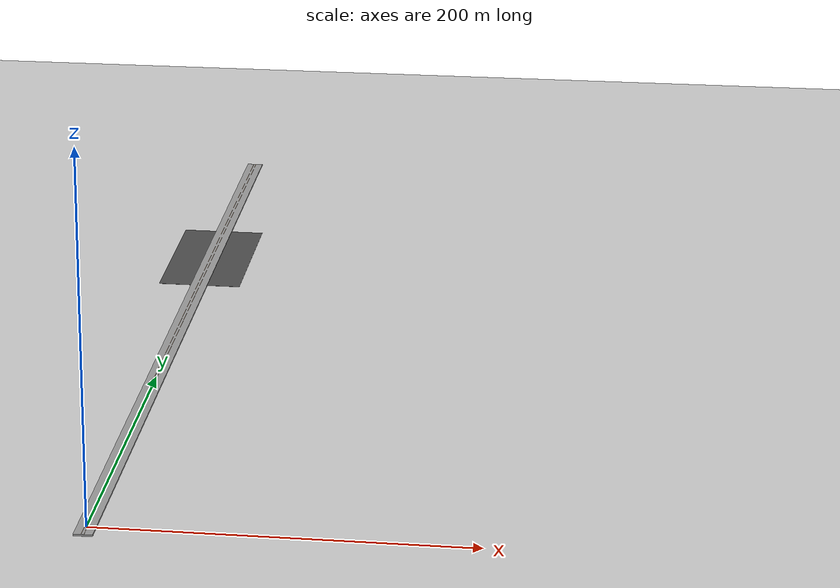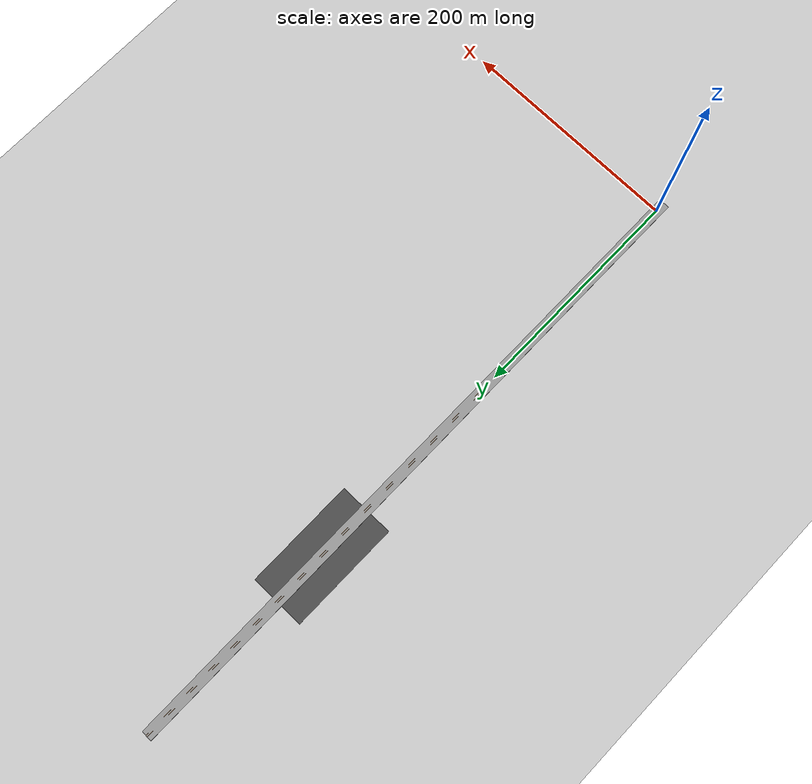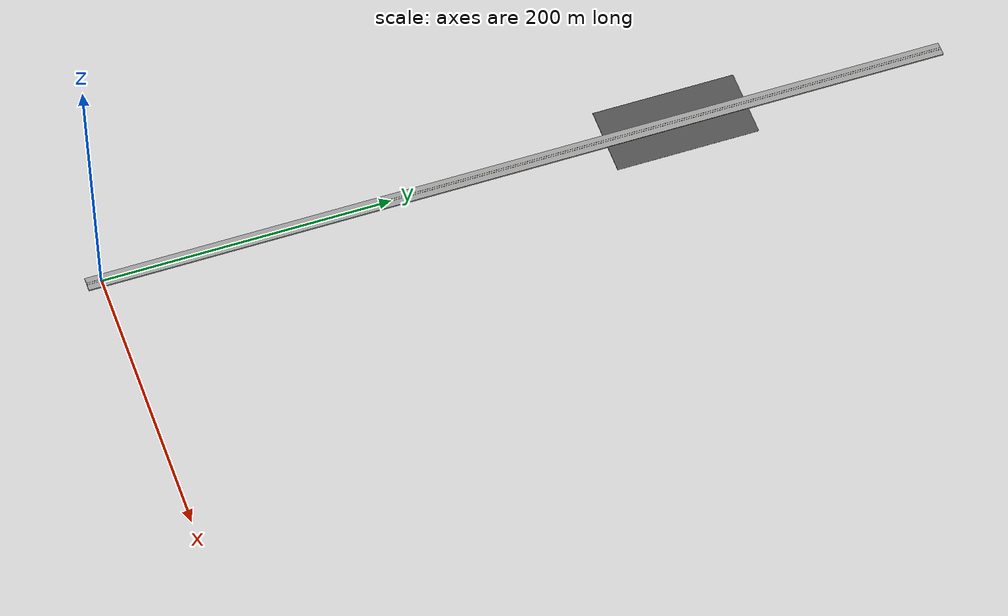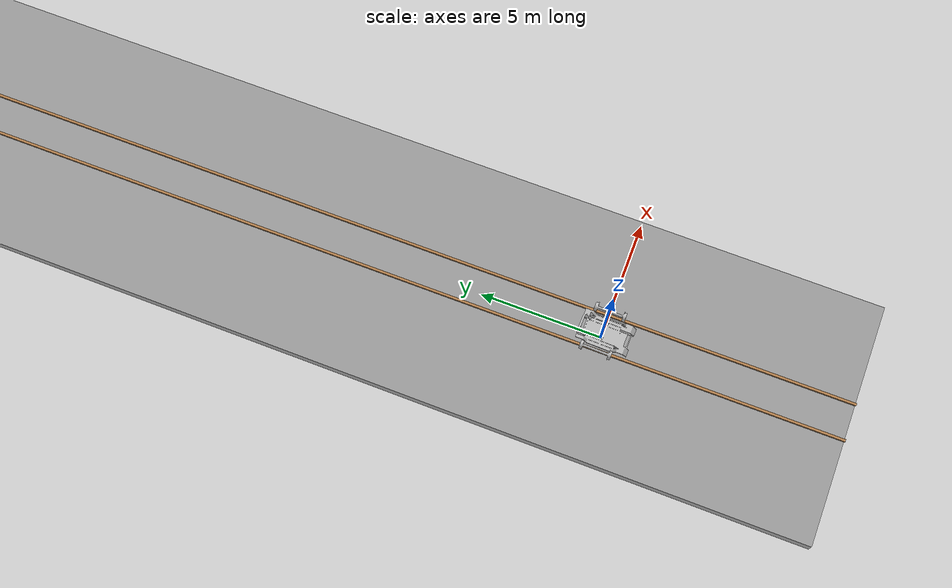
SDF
<sdf version="1.7">
 <world name="default">
  <include><uri>model://sun</uri></include>
  <include><uri>model://ground_plane</uri></include>
  <include><uri>model://asphalt_plane_long</uri><pose>0 400 0 0 0 0</pose></include>
  <include><uri>model://road2</uri><pose>0 290 0 0 0 0</pose><static>true</static></include>
  <model name="rail1">
   <include><uri>model://rail</uri><pose>-0.75 290 0.75 0 0 0</pose><static>true</static></include>
  </model>
  <model name="rail2">
   <include><uri>model://rail</uri><pose>0.75 290 0.75 0 0 0</pose><static>true</static></include>
  </model>
  <model name="amp">
   <include><uri>model://amp</uri><pose>-0 0 0.93 0 0 1.55</pose><static>false</static></include>
  </model>
 </world>
</sdf>

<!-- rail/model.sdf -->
<sdf version='1.7'>
  <model name='rail'>
    <link name='link_0'>
      <inertial>
        <mass>1</mass>
        <inertia>
          <ixx>0.166667</ixx>
          <ixy>0</ixy>
          <ixz>0</ixz>
          <iyy>0.166667</iyy>
          <iyz>0</iyz>
          <izz>0.166667</izz>
        </inertia>
        <pose>0 0 0 0 -0 0</pose>
      </inertial>
      <pose>0 -0 0 0 -0 0</pose>
      <gravity>1</gravity>
      <self_collide>0</self_collide>
      <kinematic>0</kinematic>
      <enable_wind>0</enable_wind>
      <visual name='visual'>
        <pose>0 0 0 0 -0 0</pose>
        <geometry>
          <box>
            <size>0.1 600 0.1</size>
          </box>
        </geometry>
        <material>
          <lighting>1</lighting>
          <script>
            <uri>file://media/materials/scripts/gazebo.material</uri>
            <name>Gazebo/Wood</name>
          </script>
          <shader type='pixel'>
            <normal_map>__default__</normal_map>
          </shader>
          <ambient>0.3 0.3 0.3 1</ambient>
          <diffuse>0.7 0.7 0.7 1</diffuse>
          <specular>0.01 0.01 0.01 1</specular>
          <emissive>0 0 0 1</emissive>
        </material>
        <transparency>0</transparency>
        <cast_shadows>1</cast_shadows>
      </visual>
      <collision name='collision'>
        <laser_retro>0</laser_retro>
        <max_contacts>10</max_contacts>
        <pose>0 0 0 0 -0 0</pose>
        <geometry>
          <box>
            <size>0.1 600 0.1</size>
          </box>
        </geometry>
        <surface>
          <friction>
            <ode>
              <mu>1</mu>
              <mu2>1</mu2>
              <fdir1>0 0 0</fdir1>
              <slip1>0</slip1>
              <slip2>0</slip2>
            </ode>
            <torsional>
              <coefficient>1</coefficient>
              <patch_radius>0</patch_radius>
              <surface_radius>0</surface_radius>
              <use_patch_radius>1</use_patch_radius>
              <ode>
                <slip>0</slip>
              </ode>
            </torsional>
          </friction>
          <bounce>
            <restitution_coefficient>0</restitution_coefficient>
            <threshold>1e+06</threshold>
          </bounce>
          <contact>
            <collide_without_contact>0</collide_without_contact>
            <collide_without_contact_bitmask>1</collide_without_contact_bitmask>
            <collide_bitmask>1</collide_bitmask>
            <ode>
              <soft_cfm>0</soft_cfm>
              <soft_erp>0.2</soft_erp>
              <kp>1e+13</kp>
              <kd>1</kd>
              <max_vel>0.01</max_vel>
              <min_depth>0</min_depth>
            </ode>
            <bullet>
              <split_impulse>1</split_impulse>
              <split_impulse_penetration_threshold>-0.01</split_impulse_penetration_threshold>
              <soft_cfm>0</soft_cfm>
              <soft_erp>0.2</soft_erp>
              <kp>1e+13</kp>
              <kd>1</kd>
            </bullet>
          </contact>
        </surface>
      </collision>
    </link>
    <static>0</static>
    <allow_auto_disable>1</allow_auto_disable>
  </model>
</sdf>

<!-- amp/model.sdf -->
<sdf version='1.7'>
  <model name='amp'>
    <static>false</static>

    <link name='hull'>

      <pose>0.003725 0.051897 0.000757 0 -0 0</pose>

      <collision name='collision'>
        <geometry>
          <mesh>
            <uri>model://amp_hull/amp_hull.obj</uri>
          </mesh>
        </geometry>
      </collision>

      <visual name='visual'>
        <geometry>
          <mesh>
            <uri>model://amp_hull/amp_hull.obj</uri>
            <scale>1 1 1</scale>
          </mesh>
        </geometry>
      </visual>
    </link>

    <link name='back_axle'>
      <pose>0 0.8 0 0 0 0</pose>

      <visual name='visual'>
        <geometry>
          <mesh>
            <uri>model://amp_axle/amp_axle.obj</uri>
            <scale>1 1 1</scale>
          </mesh>
        </geometry>
      </visual>

      <collision name='collision'>
        <geometry>
          <mesh>
            <uri>model://amp_axle/amp_axle.obj</uri>
          </mesh>
        </geometry>
      </collision>

    </link>

    <link name='front_axle'>
      <pose>0 -0.85 0 0 0 0</pose>

      <visual name='visual'>
        <geometry>
          <mesh>
            <uri>model://amp_axle/amp_axle.obj</uri>
            <scale>1 1 1</scale>
          </mesh>

        </geometry>
      </visual>

      <collision name='collision'>
        <geometry>
          <mesh>
            <uri>model://amp_axle/amp_axle.obj</uri>
          </mesh>

        </geometry>
      </collision>

    </link>

    <joint type="revolute" name="front_axle_hinge">
      <pose>0 0 0 0 0 0</pose>
      <child>front_axle</child>
      <parent>hull</parent>
      <axis>
        <xyz>1 0 0</xyz>
      </axis>
    </joint>

    <joint type="revolute" name="back_axle_hinge">
      <pose>0 0 0 0 0 0</pose>
      <child>back_axle</child>
      <parent>hull</parent>
      <axis>
        <xyz>1 0 0</xyz>
      </axis>
    </joint>

    <plugin name="diff_drive" filename="libgazebo_ros_diff_drive.so">
      <robot_namespace>/amp</robot_namespace>

      <command_topic>/cmd_vel</command_topic>

      <odometry_topic>/odom</odometry_topic>

      <publish_odom>true</publish_odom>
      <publish_odom_tf>true</publish_odom_tf>
      <publish_wheel_tf>true</publish_wheel_tf>

      <wheel_separation>0.5</wheel_separation>
      <wheel_diameter>0.2</wheel_diameter>

      <left_joint>front_axle_hinge</left_joint>
      <right_joint>back_axle_hinge</right_joint>

      <update_rate>50.0</update_rate>
      <odom_frame>odom</odom_frame>
      <base_frame>amp</base_frame>

    </plugin>
  </model>
</sdf>

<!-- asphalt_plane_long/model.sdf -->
<sdf version='1.7'>
  <model name='asphalt_plane_long'>
    <link name='link'>
      <self_collide>0</self_collide>
      <enable_wind>0</enable_wind>
      <kinematic>0</kinematic>
      <pose>0 0 0 0 -0 0</pose>
      <gravity>1</gravity>
      <inertial>
        <mass>1</mass>
        <pose>0 0 0 0 -0 0</pose>
        <inertia>
          <ixx>1</ixx>
          <ixy>0</ixy>
          <ixz>0</ixz>
          <iyy>1</iyy>
          <iyz>0</iyz>
          <izz>1</izz>
        </inertia>
      </inertial>
      <visual name='visual'>
        <cast_shadows>0</cast_shadows>
        <geometry>
          <box>
            <size>50 100 0.1</size>
          </box>
        </geometry>
        <material>
          <script>
            <uri>model://asphalt_plane/materials/scripts</uri>
            <uri>model://asphalt_plane/materials/textures</uri>
            <name>vrc/asphalt</name>
          </script>
          <shader type='pixel'>
            <normal_map>__default__</normal_map>
          </shader>
          <ambient>0.5 0.5 0.5 1</ambient>
          <diffuse>0.5 0.5 0.5 1</diffuse>
          <specular>0.2 0.2 0.2 1</specular>
          <emissive>0 0 0 1</emissive>
        </material>
        <pose>0 0 0 0 -0 0</pose>
        <transparency>0</transparency>
      </visual>
      <collision name='collision'>
        <laser_retro>0</laser_retro>
        <max_contacts>10</max_contacts>
        <pose>0 0 0 0 -0 0</pose>
        <geometry>
          <box>
            <size>20 20 0.1</size>
          </box>
        </geometry>
        <surface>
          <friction>
            <ode>
              <mu>1</mu>
              <mu2>1</mu2>
              <fdir1>0 0 0</fdir1>
              <slip1>0</slip1>
              <slip2>0</slip2>
            </ode>
            <torsional>
              <coefficient>1</coefficient>
              <patch_radius>0</patch_radius>
              <surface_radius>0</surface_radius>
              <use_patch_radius>1</use_patch_radius>
              <ode>
                <slip>0</slip>
              </ode>
            </torsional>
          </friction>
          <bounce>
            <restitution_coefficient>0</restitution_coefficient>
            <threshold>1e+06</threshold>
          </bounce>
          <contact>
            <collide_without_contact>0</collide_without_contact>
            <collide_without_contact_bitmask>1</collide_without_contact_bitmask>
            <collide_bitmask>1</collide_bitmask>
            <ode>
              <soft_cfm>0</soft_cfm>
              <soft_erp>0.2</soft_erp>
              <kp>1e+13</kp>
              <kd>1</kd>
              <max_vel>0.01</max_vel>
              <min_depth>0</min_depth>
            </ode>
            <bullet>
              <split_impulse>1</split_impulse>
              <split_impulse_penetration_threshold>-0.01</split_impulse_penetration_threshold>
              <soft_cfm>0</soft_cfm>
              <soft_erp>0.2</soft_erp>
              <kp>1e+13</kp>
              <kd>1</kd>
            </bullet>
          </contact>
        </surface>
      </collision>
    </link>
    <static>1</static>
    <allow_auto_disable>1</allow_auto_disable>
  </model>
</sdf>

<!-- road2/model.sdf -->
<sdf version='1.7'>
  <model name='road2'>
    <link name='link_1'>
      <inertial>
        <mass>1</mass>
        <inertia>
          <ixx>0.166667</ixx>
          <ixy>0</ixy>
          <ixz>0</ixz>
          <iyy>0.166667</iyy>
          <iyz>0</iyz>
          <izz>0.166667</izz>
        </inertia>
        <pose>0 0 0 0 -0 0</pose>
      </inertial>
      <pose>-0 2e-06 0 0 -0 0</pose>
      <gravity>0</gravity>
      <self_collide>0</self_collide>
      <kinematic>0</kinematic>
      <enable_wind>0</enable_wind>
      <visual name='visual'>
        <pose>0 0 0 0 -0 0</pose>
        <geometry>
          <box>
            <size>10 600 1</size>
          </box>
        </geometry>
        <material>
          <lighting>1</lighting>
          <script>
            <uri>file://media/materials/scripts/gazebo.material</uri>
            <name>Gazebo/Grey</name>
          </script>
          <shader type='pixel'>
            <normal_map>__default__</normal_map>
          </shader>
          <ambient>0.3 0.3 0.3 1</ambient>
          <diffuse>0.7 0.7 0.7 1</diffuse>
          <specular>0.01 0.01 0.01 1</specular>
          <emissive>0 0 0 1</emissive>
        </material>
        <transparency>0</transparency>
        <cast_shadows>1</cast_shadows>
      </visual>
      <collision name='collision'>
        <laser_retro>0</laser_retro>
        <max_contacts>10</max_contacts>
        <pose>0 0 0 0 -0 0</pose>
        <geometry>
          <box>
            <size>10 600 1</size>
          </box>
        </geometry>
        <surface>
          <friction>
            <ode>
              <mu>1</mu>
              <mu2>1</mu2>
              <fdir1>0 0 0</fdir1>
              <slip1>0</slip1>
              <slip2>0</slip2>
            </ode>
            <torsional>
              <coefficient>1</coefficient>
              <patch_radius>0</patch_radius>
              <surface_radius>0</surface_radius>
              <use_patch_radius>1</use_patch_radius>
              <ode>
                <slip>0</slip>
              </ode>
            </torsional>
          </friction>
          <bounce>
            <restitution_coefficient>0</restitution_coefficient>
            <threshold>1e+06</threshold>
          </bounce>
          <contact>
            <collide_without_contact>0</collide_without_contact>
            <collide_without_contact_bitmask>1</collide_without_contact_bitmask>
            <collide_bitmask>1</collide_bitmask>
            <ode>
              <soft_cfm>0</soft_cfm>
              <soft_erp>0.2</soft_erp>
              <kp>1e+13</kp>
              <kd>1</kd>
              <max_vel>0.01</max_vel>
              <min_depth>0</min_depth>
            </ode>
            <bullet>
              <split_impulse>1</split_impulse>
              <split_impulse_penetration_threshold>-0.01</split_impulse_penetration_threshold>
              <soft_cfm>0</soft_cfm>
              <soft_erp>0.2</soft_erp>
              <kp>1e+13</kp>
              <kd>1</kd>
            </bullet>
          </contact>
        </surface>
      </collision>
    </link>
    <static>0</static>
    <allow_auto_disable>1</allow_auto_disable>
  </model>
</sdf>
